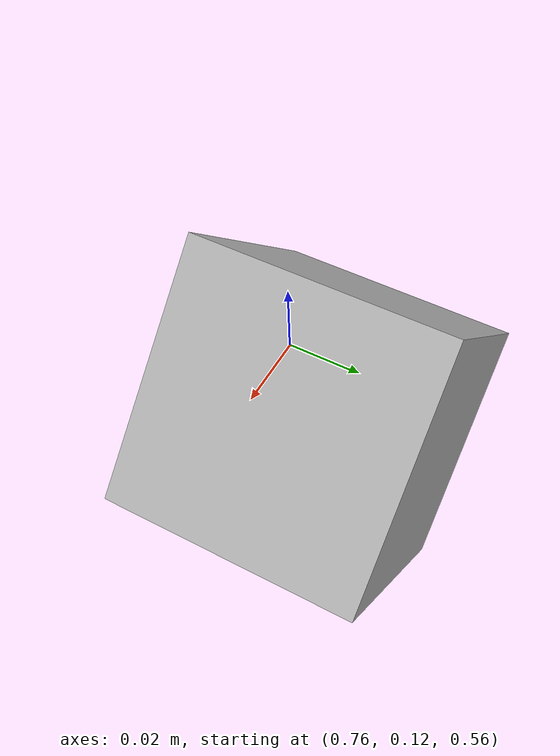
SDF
<?xml version="1.0" ?>
<sdf version="1.4">
  <world name="default">
    <!-- A gazebo links attacher -->
    <plugin name="ros_link_attacher_plugin" filename="libgazebo_ros_link_attacher.so"/>
    <include>
      <uri>model://sun</uri>
    </include>
    <!-- A ground plane -->
    <include>
      <uri>model://ground_plane</uri>
    </include>
    <model name="camera">
      <static>true</static>
      <link name="link">
        <pose>0.8 0.15 0.6 0 0.785 3.14</pose>
        <inertial>
          <mass>0.1</mass>
        </inertial>
        <collision name="collision">
          <geometry>
            <box>
              <size>0.05 0.05 0.05</size>
            </box>
          </geometry>
        </collision>
        <visual name="visual">
          <geometry>
            <box>
              <size>0.05 0.05 0.05</size>
            </box>
          </geometry>
        </visual>
        <sensor name="camera" type="camera">
          <camera>
            <horizontal_fov>1.047</horizontal_fov>
            <image>
              <width>640</width>
              <height>480</height>
              <format>B8G8R8</format>
            </image>
            <clip>
              <near>0.1</near>
              <far>100</far>
            </clip>
          </camera>
          <always_on>1</always_on>
          <update_rate>30</update_rate>
          <visualize>true</visualize>
          <plugin name="camera_controller" filename="libgazebo_ros_camera.so">
            <alwaysOn>true</alwaysOn>
            <updateRate>0.0</updateRate>
            <cameraName>gazeboCam</cameraName>
            <imageTopicName>gazeboCam/rgb</imageTopicName>
            <cameraInfoTopicName>gazeboCam/camera_info</cameraInfoTopicName>
            <frameName>camera_link</frameName>
            <hackBaseline>0.07</hackBaseline>
            <distortionK1>0.0</distortionK1>
            <distortionK2>0.0</distortionK2>
            <distortionK3>0.0</distortionK3>
            <distortionT1>0.0</distortionT1>
            <distortionT2>0.0</distortionT2>
          </plugin>
        </sensor>
      </link>
    </model>
  </world>
</sdf>
